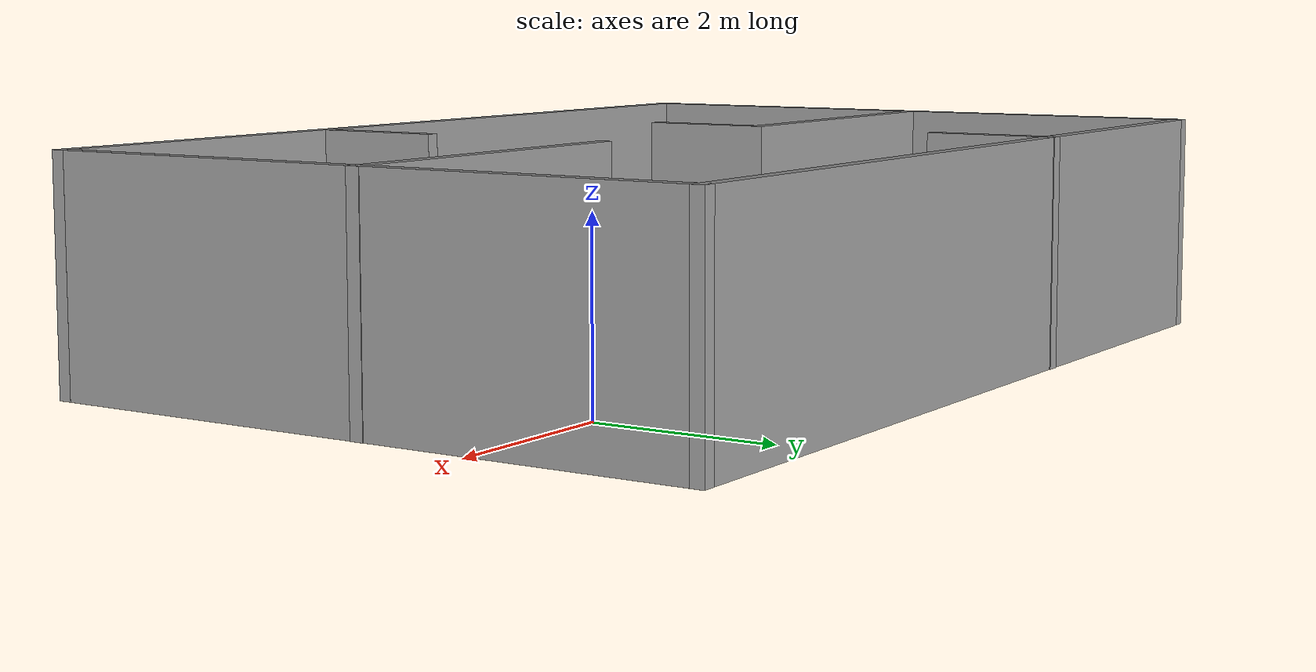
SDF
<?xml version='1.0'?>
<sdf version='1.7'>
  <model name='walls2'>
    <pose>-3.60747 -1.34481 0 0 -0 0</pose>
    <link name='Wall_12'>
      <collision name='Wall_12_Collision'>
        <geometry>
          <box>
            <size>4 0.15 2.5</size>
          </box>
        </geometry>
        <pose>0 0 1.25 0 -0 0</pose>
      </collision>
      <visual name='Wall_12_Visual'>
        <pose>0 0 1.25 0 -0 0</pose>
        <geometry>
          <box>
            <size>4 0.15 2.5</size>
          </box>
        </geometry>
        <material>
          <script>
            <uri>model://walls/materials/scripts</uri>
            <uri>model://walls/materials/textures</uri>
            <name>vrc/grey_wall</name>
          </script>
          <ambient>1 1 1 1</ambient>
        </material>
        <meta>
          <layer>0</layer>
        </meta>
      </visual>
      <pose>-3.49907 0.092532 0 0 -0 0</pose>
    </link>
    <link name='Wall_13'>
      <collision name='Wall_13_Collision'>
        <geometry>
          <box>
            <size>1.5 0.15 2.5</size>
          </box>
        </geometry>
        <pose>0 0 1.25 0 -0 0</pose>
      </collision>
      <visual name='Wall_13_Visual'>
        <pose>0 0 1.25 0 -0 0</pose>
        <geometry>
          <box>
            <size>1.5 0.15 2.5</size>
          </box>
        </geometry>
        <material>
          <script>
            <uri>model://walls/materials/scripts</uri>
            <uri>model://walls/materials/textures</uri>
            <name>vrc/grey_wall</name>
          </script>
          <ambient>1 1 1 1</ambient>
        </material>
        <meta>
          <layer>0</layer>
        </meta>
      </visual>
      <pose>-1.57407 -0.582468 0 0 -0 -1.5708</pose>
    </link>
    <link name='Wall_15'>
      <collision name='Wall_15_Collision'>
        <geometry>
          <box>
            <size>1.5 0.15 2.5</size>
          </box>
        </geometry>
        <pose>0 0 1.25 0 -0 0</pose>
      </collision>
      <visual name='Wall_15_Visual'>
        <pose>0 0 1.25 0 -0 0</pose>
        <geometry>
          <box>
            <size>1.5 0.15 2.5</size>
          </box>
        </geometry>
        <material>
          <script>
            <uri>model://walls/materials/scripts</uri>
            <uri>model://walls/materials/textures</uri>
            <name>vrc/grey_wall</name>
          </script>
          <ambient>1 1 1 1</ambient>
        </material>
        <meta>
          <layer>0</layer>
        </meta>
      </visual>
      <pose>-1.58439 3.02591 0 0 -0 -1.5708</pose>
    </link>
    <link name='Wall_18'>
      <collision name='Wall_18_Collision'>
        <geometry>
          <box>
            <size>4 0.15 2.5</size>
          </box>
        </geometry>
        <pose>0 0 1.25 0 -0 0</pose>
      </collision>
      <visual name='Wall_18_Visual'>
        <pose>0 0 1.25 0 -0 0</pose>
        <geometry>
          <box>
            <size>4 0.15 2.5</size>
          </box>
        </geometry>
        <material>
          <script>
            <uri>model://walls/materials/scripts</uri>
            <uri>model://walls/materials/textures</uri>
            <name>vrc/grey_wall</name>
          </script>
          <ambient>1 1 1 1</ambient>
        </material>
        <meta>
          <layer>0</layer>
        </meta>
      </visual>
      <pose>3.52231 0.069401 0 0 -0 3.14159</pose>
    </link>
    <link name='Wall_19'>
      <collision name='Wall_19_Collision'>
        <geometry>
          <box>
            <size>1.5 0.15 2.5</size>
          </box>
        </geometry>
        <pose>0 0 1.25 0 -0 0</pose>
      </collision>
      <visual name='Wall_19_Visual'>
        <pose>0 0 1.25 0 -0 0</pose>
        <geometry>
          <box>
            <size>1.5 0.15 2.5</size>
          </box>
        </geometry>
        <material>
          <script>
            <uri>model://walls/materials/scripts</uri>
            <uri>model://walls/materials/textures</uri>
            <name>vrc/grey_wall</name>
          </script>
          <ambient>1 1 1 1</ambient>
        </material>
        <meta>
          <layer>0</layer>
        </meta>
      </visual>
      <pose>1.59731 -2.905599 0 0 -0 -1.5708</pose>
    </link>
    <link name='Wall_5'>
      <collision name='Wall_5_Collision'>
        <geometry>
          <box>
            <size>11.0367 0.15 2.5</size>
          </box>
        </geometry>
        <pose>0 0 1.25 0 -0 0</pose>
      </collision>
      <visual name='Wall_5_Visual'>
        <pose>0 0 1.25 0 -0 0</pose>
        <geometry>
          <box>
            <size>11.0367 0.15 2.5</size>
          </box>
        </geometry>
        <material>
          <script>
            <uri>model://walls/materials/scripts</uri>
            <uri>model://walls/materials/textures</uri>
            <name>vrc/grey_wall</name>
          </script>
          <ambient>1 1 1 1</ambient>
        </material>
        <meta>
          <layer>0</layer>
        </meta>
      </visual>
      <pose>-0.003982 -3.70089 0 0 -0 0</pose>
    </link>
    <link name='Wall_6'>
      <collision name='Wall_6_Collision'>
        <geometry>
          <box>
            <size>7.54277 0.15 2.5</size>
          </box>
        </geometry>
        <pose>0 0 1.25 0 -0 0</pose>
      </collision>
      <visual name='Wall_6_Visual'>
        <pose>0 0 1.25 0 -0 0</pose>
        <geometry>
          <box>
            <size>7.54277 0.15 2.5</size>
          </box>
        </geometry>
        <material>
          <script>
            <uri>model://walls/materials/scripts</uri>
            <uri>model://walls/materials/textures</uri>
            <name>vrc/grey_wall</name>
          </script>
          <ambient>1 1 1 1</ambient>
        </material>
        <meta>
          <layer>0</layer>
        </meta>
      </visual>
      <pose>5.43924 -0.004502 0 0 -0 1.5708</pose>
    </link>
    <link name='Wall_7'>
      <collision name='Wall_7_Collision'>
        <geometry>
          <box>
            <size>11.0367 0.15 2.5</size>
          </box>
        </geometry>
        <pose>0 0 1.25 0 -0 0</pose>
      </collision>
      <visual name='Wall_7_Visual'>
        <pose>0 0 1.25 0 -0 0</pose>
        <geometry>
          <box>
            <size>11.0367 0.15 2.5</size>
          </box>
        </geometry>
        <material>
          <script>
            <uri>model://walls/materials/scripts</uri>
            <uri>model://walls/materials/textures</uri>
            <name>vrc/grey_wall</name>
          </script>
          <ambient>1 1 1 1</ambient>
        </material>
        <meta>
          <layer>0</layer>
        </meta>
      </visual>
      <pose>-0.003982 3.69188 0 0 -0 3.14159</pose>
    </link>
    <link name='Wall_8'>
      <collision name='Wall_8_Collision'>
        <geometry>
          <box>
            <size>7.54281 0.15 2.5</size>
          </box>
        </geometry>
        <pose>0 0 1.25 0 -0 0</pose>
      </collision>
      <visual name='Wall_8_Visual'>
        <pose>0 0 1.25 0 -0 0</pose>
        <geometry>
          <box>
            <size>7.54281 0.15 2.5</size>
          </box>
        </geometry>
        <material>
          <script>
            <uri>model://walls/materials/scripts</uri>
            <uri>model://walls/materials/textures</uri>
            <name>vrc/grey_wall</name>
          </script>
          <ambient>1 1 1 1</ambient>
        </material>
        <meta>
          <layer>0</layer>
        </meta>
      </visual>
      <pose>-5.4472 -0.004502 0 0 -0 -1.5708</pose>
    </link>
    <static>1</static>
  </model>
</sdf>
